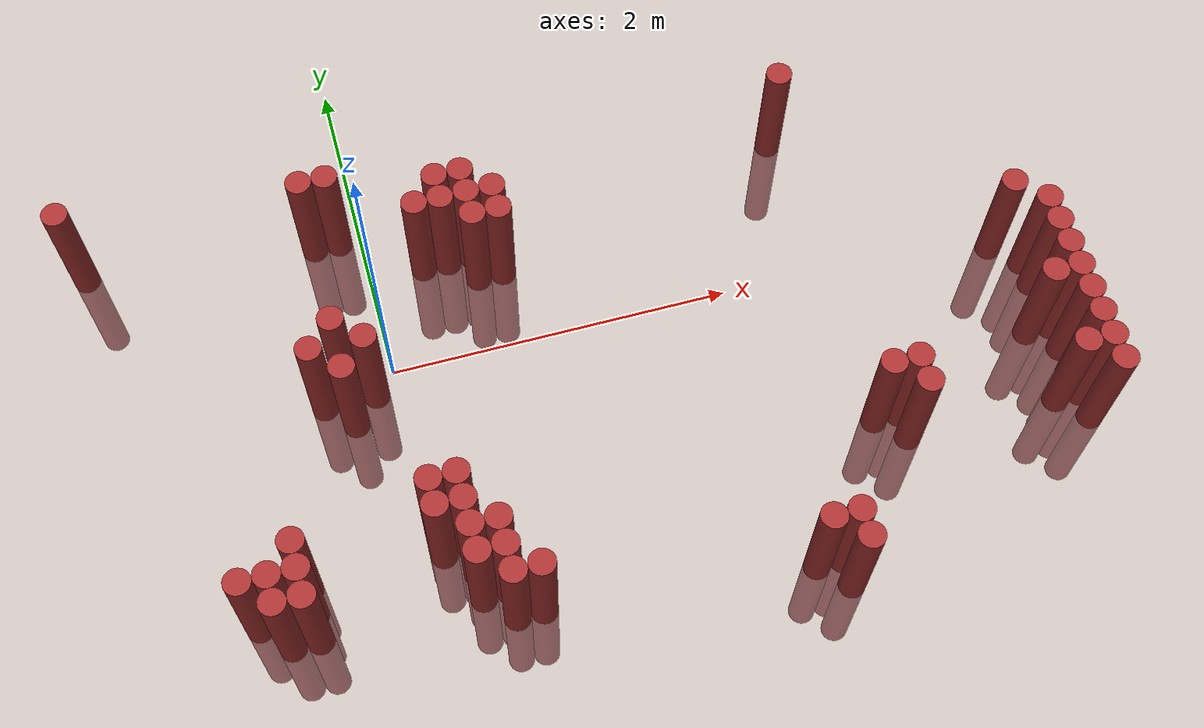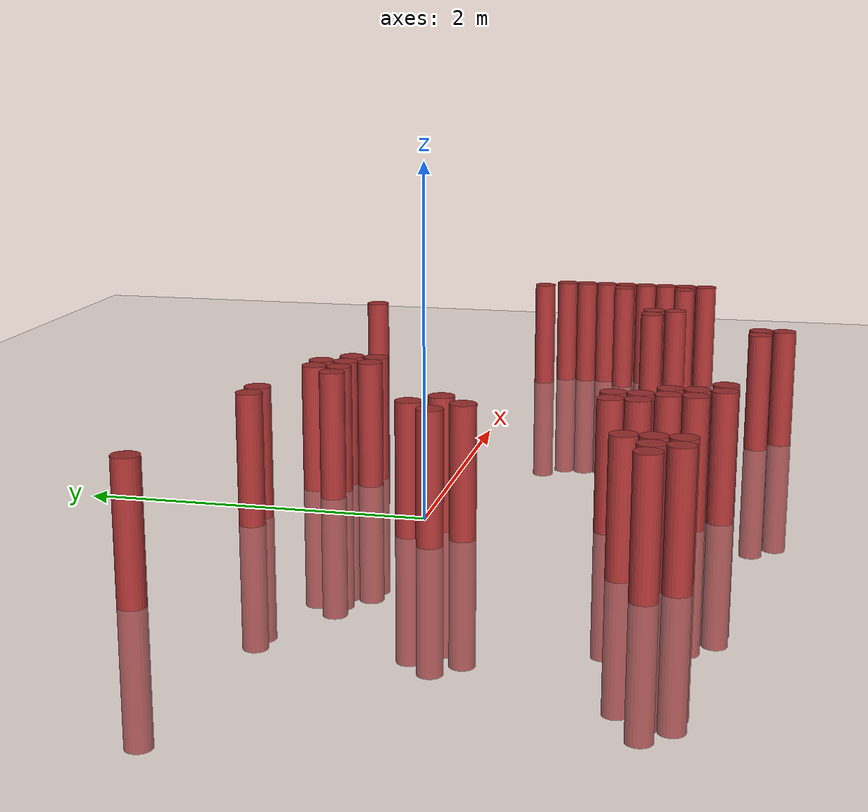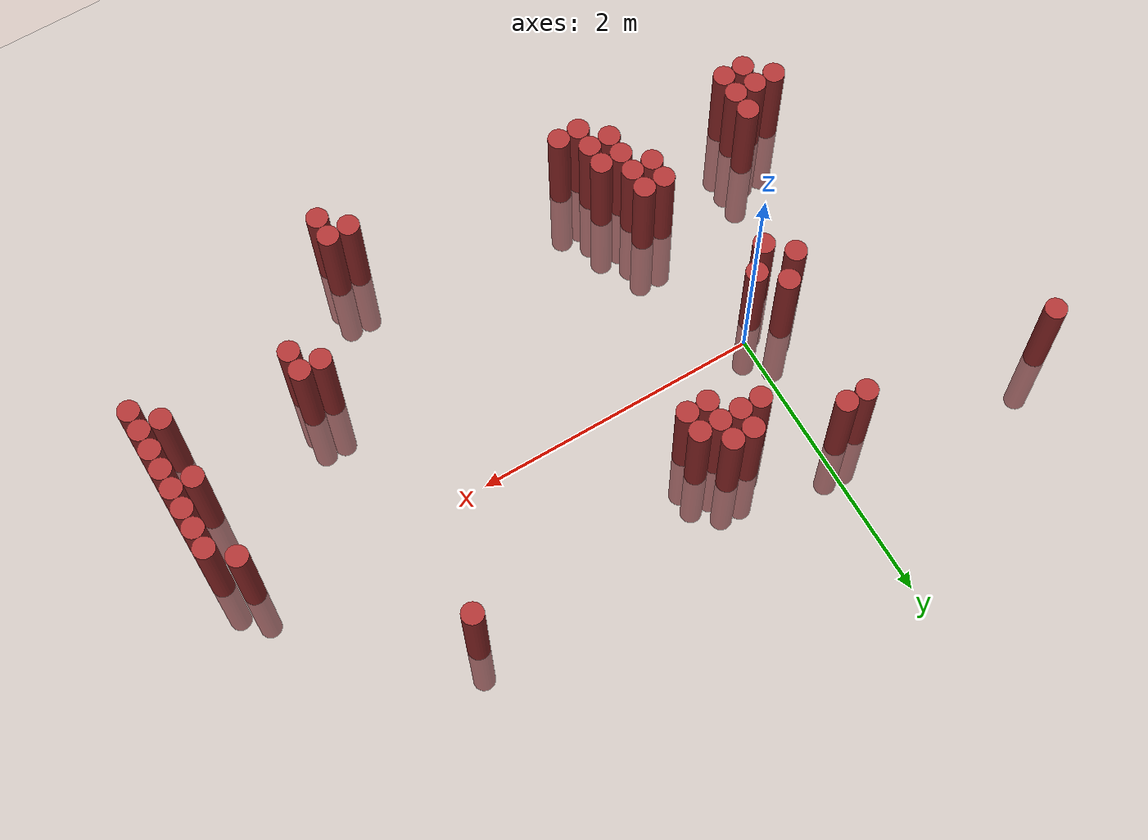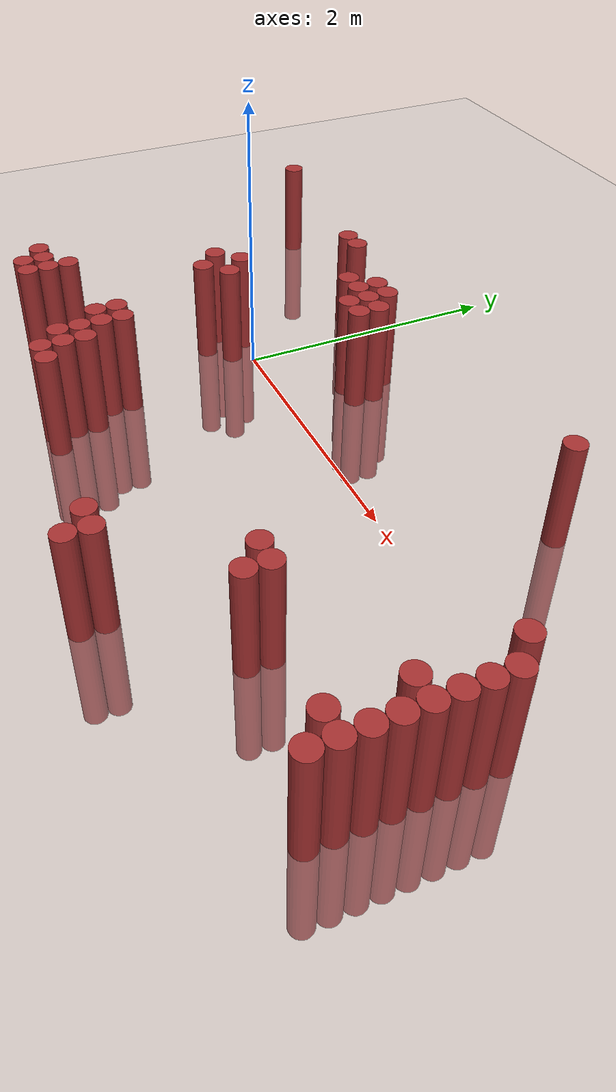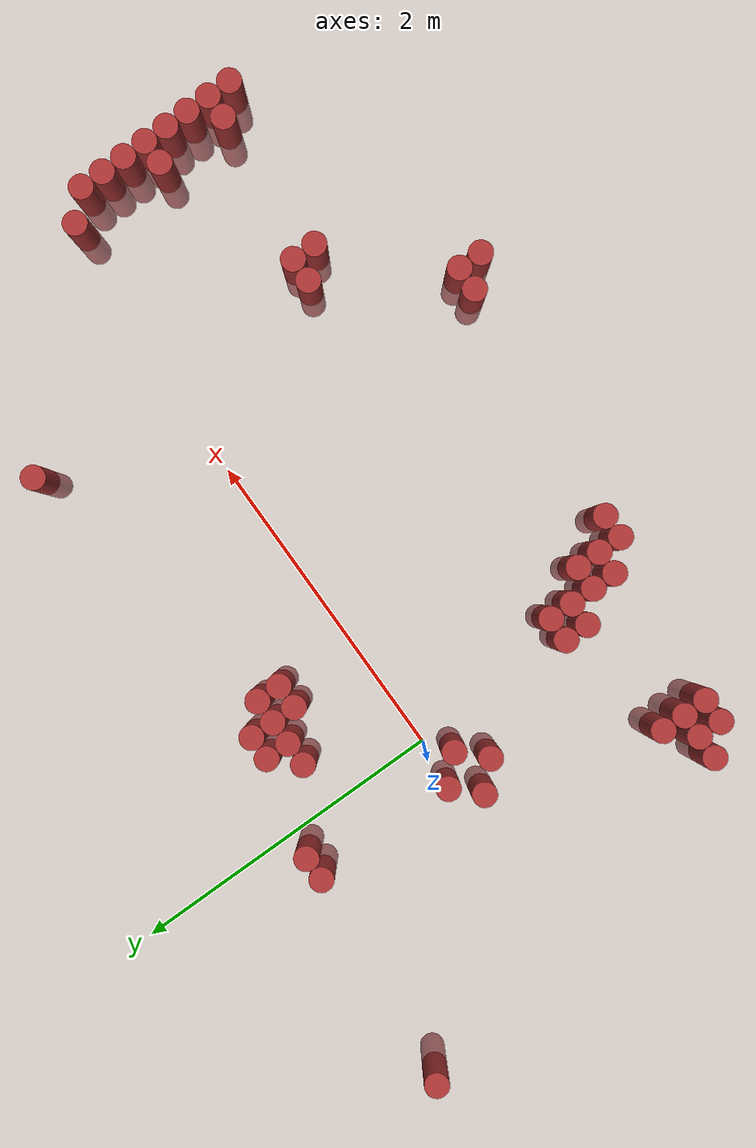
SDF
<sdf version="1.6">
 <world name="default">
  <model name="ground_plane">
   <static>1</static>
   <link name="link">
    <collision name="collision">
     <geometry><plane><normal>0 0 1</normal><size>100 100</size></plane></geometry>
     <surface><friction><ode><mu>100</mu><mu2>50</mu2></ode></friction></surface>
    </collision>
    <visual name="visual">
     <cast_shadows>0</cast_shadows>
     <geometry><plane><normal>0 0 1</normal><size>100 100</size></plane></geometry>
     <material>
      <script><uri>file://media/materials/scripts/gazebo.material</uri><name>Gazebo/Grey</name></script>
     </material>
    </visual>
   </link>
  </model>
  <model name="unit_cylinder_340">
   <static>1</static>
   <pose>-1.625000 1.075000 0.000000 0.000000 0.000000 0.000000</pose>
   <link name="link">
    <inertial>
     <mass>1</mass>
     <inertia><ixx>0.145833</ixx><ixy>0</ixy><ixz>0</ixz><iyy>0.145833</iyy><iyz>0</iyz><izz>0.125</izz></inertia>
    </inertial>
    <collision name="collision">
     <geometry><cylinder><radius>0.075000</radius><length>1.5</length></cylinder></geometry>
    </collision>
    <visual name="visual">
     <geometry><cylinder><radius>0.075000</radius><length>1.5</length></cylinder></geometry>
     <material>
      <ambient>0.648000 0.192000 0.192000 1</ambient>
      <diffuse>0.648000 0.192000 0.192000 1</diffuse>
     </material>
     <material>
      <script><name>Gazebo/Grey</name><uri>file://media/materials/scripts/gazebo.material</uri></script>
     </material>
    </visual>
   </link>
  </model>
  <model name="unit_cylinder_354">
   <static>1</static>
   <pose>-1.025000 -1.325000 0.000000 0.000000 0.000000 0.000000</pose>
   <link name="link">
    <inertial>
     <mass>1</mass>
     <inertia><ixx>0.145833</ixx><ixy>0</ixy><ixz>0</ixz><iyy>0.145833</iyy><iyz>0</iyz><izz>0.125</izz></inertia>
    </inertial>
    <collision name="collision">
     <geometry><cylinder><radius>0.075000</radius><length>1.5</length></cylinder></geometry>
    </collision>
    <visual name="visual">
     <geometry><cylinder><radius>0.075000</radius><length>1.5</length></cylinder></geometry>
     <material>
      <ambient>0.648000 0.192000 0.192000 1</ambient>
      <diffuse>0.648000 0.192000 0.192000 1</diffuse>
     </material>
     <material>
      <script><name>Gazebo/Grey</name><uri>file://media/materials/scripts/gazebo.material</uri></script>
     </material>
    </visual>
   </link>
  </model>
  <model name="unit_cylinder_355">
   <static>1</static>
   <pose>-0.875000 -1.475000 0.000000 0.000000 0.000000 0.000000</pose>
   <link name="link">
    <inertial>
     <mass>1</mass>
     <inertia><ixx>0.145833</ixx><ixy>0</ixy><ixz>0</ixz><iyy>0.145833</iyy><iyz>0</iyz><izz>0.125</izz></inertia>
    </inertial>
    <collision name="collision">
     <geometry><cylinder><radius>0.075000</radius><length>1.5</length></cylinder></geometry>
    </collision>
    <visual name="visual">
     <geometry><cylinder><radius>0.075000</radius><length>1.5</length></cylinder></geometry>
     <material>
      <ambient>0.648000 0.192000 0.192000 1</ambient>
      <diffuse>0.648000 0.192000 0.192000 1</diffuse>
     </material>
     <material>
      <script><name>Gazebo/Grey</name><uri>file://media/materials/scripts/gazebo.material</uri></script>
     </material>
    </visual>
   </link>
  </model>
  <model name="unit_cylinder_356">
   <static>1</static>
   <pose>-0.875000 -1.325000 0.000000 0.000000 0.000000 0.000000</pose>
   <link name="link">
    <inertial>
     <mass>1</mass>
     <inertia><ixx>0.145833</ixx><ixy>0</ixy><ixz>0</ixz><iyy>0.145833</iyy><iyz>0</iyz><izz>0.125</izz></inertia>
    </inertial>
    <collision name="collision">
     <geometry><cylinder><radius>0.075000</radius><length>1.5</length></cylinder></geometry>
    </collision>
    <visual name="visual">
     <geometry><cylinder><radius>0.075000</radius><length>1.5</length></cylinder></geometry>
     <material>
      <ambient>0.648000 0.192000 0.192000 1</ambient>
      <diffuse>0.648000 0.192000 0.192000 1</diffuse>
     </material>
     <material>
      <script><name>Gazebo/Grey</name><uri>file://media/materials/scripts/gazebo.material</uri></script>
     </material>
    </visual>
   </link>
  </model>
  <model name="unit_cylinder_357">
   <static>1</static>
   <pose>-0.725000 -1.475000 0.000000 0.000000 0.000000 0.000000</pose>
   <link name="link">
    <inertial>
     <mass>1</mass>
     <inertia><ixx>0.145833</ixx><ixy>0</ixy><ixz>0</ixz><iyy>0.145833</iyy><iyz>0</iyz><izz>0.125</izz></inertia>
    </inertial>
    <collision name="collision">
     <geometry><cylinder><radius>0.075000</radius><length>1.5</length></cylinder></geometry>
    </collision>
    <visual name="visual">
     <geometry><cylinder><radius>0.075000</radius><length>1.5</length></cylinder></geometry>
     <material>
      <ambient>0.648000 0.192000 0.192000 1</ambient>
      <diffuse>0.648000 0.192000 0.192000 1</diffuse>
     </material>
     <material>
      <script><name>Gazebo/Grey</name><uri>file://media/materials/scripts/gazebo.material</uri></script>
     </material>
    </visual>
   </link>
  </model>
  <model name="unit_cylinder_358">
   <static>1</static>
   <pose>-0.725000 -1.325000 0.000000 0.000000 0.000000 0.000000</pose>
   <link name="link">
    <inertial>
     <mass>1</mass>
     <inertia><ixx>0.145833</ixx><ixy>0</ixy><ixz>0</ixz><iyy>0.145833</iyy><iyz>0</iyz><izz>0.125</izz></inertia>
    </inertial>
    <collision name="collision">
     <geometry><cylinder><radius>0.075000</radius><length>1.5</length></cylinder></geometry>
    </collision>
    <visual name="visual">
     <geometry><cylinder><radius>0.075000</radius><length>1.5</length></cylinder></geometry>
     <material>
      <ambient>0.648000 0.192000 0.192000 1</ambient>
      <diffuse>0.648000 0.192000 0.192000 1</diffuse>
     </material>
     <material>
      <script><name>Gazebo/Grey</name><uri>file://media/materials/scripts/gazebo.material</uri></script>
     </material>
    </visual>
   </link>
  </model>
  <model name="unit_cylinder_359">
   <static>1</static>
   <pose>-0.725000 -1.175000 0.000000 0.000000 0.000000 0.000000</pose>
   <link name="link">
    <inertial>
     <mass>1</mass>
     <inertia><ixx>0.145833</ixx><ixy>0</ixy><ixz>0</ixz><iyy>0.145833</iyy><iyz>0</iyz><izz>0.125</izz></inertia>
    </inertial>
    <collision name="collision">
     <geometry><cylinder><radius>0.075000</radius><length>1.5</length></cylinder></geometry>
    </collision>
    <visual name="visual">
     <geometry><cylinder><radius>0.075000</radius><length>1.5</length></cylinder></geometry>
     <material>
      <ambient>0.648000 0.192000 0.192000 1</ambient>
      <diffuse>0.648000 0.192000 0.192000 1</diffuse>
     </material>
     <material>
      <script><name>Gazebo/Grey</name><uri>file://media/materials/scripts/gazebo.material</uri></script>
     </material>
    </visual>
   </link>
  </model>
  <model name="unit_cylinder_366">
   <static>1</static>
   <pose>-0.425000 -0.125000 0.000000 0.000000 0.000000 0.000000</pose>
   <link name="link">
    <inertial>
     <mass>1</mass>
     <inertia><ixx>0.145833</ixx><ixy>0</ixy><ixz>0</ixz><iyy>0.145833</iyy><iyz>0</iyz><izz>0.125</izz></inertia>
    </inertial>
    <collision name="collision">
     <geometry><cylinder><radius>0.075000</radius><length>1.5</length></cylinder></geometry>
    </collision>
    <visual name="visual">
     <geometry><cylinder><radius>0.075000</radius><length>1.5</length></cylinder></geometry>
     <material>
      <ambient>0.648000 0.192000 0.192000 1</ambient>
      <diffuse>0.648000 0.192000 0.192000 1</diffuse>
     </material>
     <material>
      <script><name>Gazebo/Grey</name><uri>file://media/materials/scripts/gazebo.material</uri></script>
     </material>
    </visual>
   </link>
  </model>
  <model name="unit_cylinder_371">
   <static>1</static>
   <pose>-0.275000 -0.275000 0.000000 0.000000 0.000000 0.000000</pose>
   <link name="link">
    <inertial>
     <mass>1</mass>
     <inertia><ixx>0.145833</ixx><ixy>0</ixy><ixz>0</ixz><iyy>0.145833</iyy><iyz>0</iyz><izz>0.125</izz></inertia>
    </inertial>
    <collision name="collision">
     <geometry><cylinder><radius>0.075000</radius><length>1.5</length></cylinder></geometry>
    </collision>
    <visual name="visual">
     <geometry><cylinder><radius>0.075000</radius><length>1.5</length></cylinder></geometry>
     <material>
      <ambient>0.648000 0.192000 0.192000 1</ambient>
      <diffuse>0.648000 0.192000 0.192000 1</diffuse>
     </material>
     <material>
      <script><name>Gazebo/Grey</name><uri>file://media/materials/scripts/gazebo.material</uri></script>
     </material>
    </visual>
   </link>
  </model>
  <model name="unit_cylinder_372">
   <static>1</static>
   <pose>-0.275000 0.025000 0.000000 0.000000 0.000000 0.000000</pose>
   <link name="link">
    <inertial>
     <mass>1</mass>
     <inertia><ixx>0.145833</ixx><ixy>0</ixy><ixz>0</ixz><iyy>0.145833</iyy><iyz>0</iyz><izz>0.125</izz></inertia>
    </inertial>
    <collision name="collision">
     <geometry><cylinder><radius>0.075000</radius><length>1.5</length></cylinder></geometry>
    </collision>
    <visual name="visual">
     <geometry><cylinder><radius>0.075000</radius><length>1.5</length></cylinder></geometry>
     <material>
      <ambient>0.648000 0.192000 0.192000 1</ambient>
      <diffuse>0.648000 0.192000 0.192000 1</diffuse>
     </material>
     <material>
      <script><name>Gazebo/Grey</name><uri>file://media/materials/scripts/gazebo.material</uri></script>
     </material>
    </visual>
   </link>
  </model>
  <model name="unit_cylinder_373">
   <static>1</static>
   <pose>-0.275000 0.925000 0.000000 0.000000 0.000000 0.000000</pose>
   <link name="link">
    <inertial>
     <mass>1</mass>
     <inertia><ixx>0.145833</ixx><ixy>0</ixy><ixz>0</ixz><iyy>0.145833</iyy><iyz>0</iyz><izz>0.125</izz></inertia>
    </inertial>
    <collision name="collision">
     <geometry><cylinder><radius>0.075000</radius><length>1.5</length></cylinder></geometry>
    </collision>
    <visual name="visual">
     <geometry><cylinder><radius>0.075000</radius><length>1.5</length></cylinder></geometry>
     <material>
      <ambient>0.648000 0.192000 0.192000 1</ambient>
      <diffuse>0.648000 0.192000 0.192000 1</diffuse>
     </material>
     <material>
      <script><name>Gazebo/Grey</name><uri>file://media/materials/scripts/gazebo.material</uri></script>
     </material>
    </visual>
   </link>
  </model>
  <model name="unit_cylinder_377">
   <static>1</static>
   <pose>-0.125000 -0.125000 0.000000 0.000000 0.000000 0.000000</pose>
   <link name="link">
    <inertial>
     <mass>1</mass>
     <inertia><ixx>0.145833</ixx><ixy>0</ixy><ixz>0</ixz><iyy>0.145833</iyy><iyz>0</iyz><izz>0.125</izz></inertia>
    </inertial>
    <collision name="collision">
     <geometry><cylinder><radius>0.075000</radius><length>1.5</length></cylinder></geometry>
    </collision>
    <visual name="visual">
     <geometry><cylinder><radius>0.075000</radius><length>1.5</length></cylinder></geometry>
     <material>
      <ambient>0.648000 0.192000 0.192000 1</ambient>
      <diffuse>0.648000 0.192000 0.192000 1</diffuse>
     </material>
     <material>
      <script><name>Gazebo/Grey</name><uri>file://media/materials/scripts/gazebo.material</uri></script>
     </material>
    </visual>
   </link>
  </model>
  <model name="unit_cylinder_378">
   <static>1</static>
   <pose>-0.125000 0.925000 0.000000 0.000000 0.000000 0.000000</pose>
   <link name="link">
    <inertial>
     <mass>1</mass>
     <inertia><ixx>0.145833</ixx><ixy>0</ixy><ixz>0</ixz><iyy>0.145833</iyy><iyz>0</iyz><izz>0.125</izz></inertia>
    </inertial>
    <collision name="collision">
     <geometry><cylinder><radius>0.075000</radius><length>1.5</length></cylinder></geometry>
    </collision>
    <visual name="visual">
     <geometry><cylinder><radius>0.075000</radius><length>1.5</length></cylinder></geometry>
     <material>
      <ambient>0.648000 0.192000 0.192000 1</ambient>
      <diffuse>0.648000 0.192000 0.192000 1</diffuse>
     </material>
     <material>
      <script><name>Gazebo/Grey</name><uri>file://media/materials/scripts/gazebo.material</uri></script>
     </material>
    </visual>
   </link>
  </model>
  <model name="unit_cylinder_382">
   <static>1</static>
   <pose>0.025000 -1.175000 0.000000 0.000000 0.000000 0.000000</pose>
   <link name="link">
    <inertial>
     <mass>1</mass>
     <inertia><ixx>0.145833</ixx><ixy>0</ixy><ixz>0</ixz><iyy>0.145833</iyy><iyz>0</iyz><izz>0.125</izz></inertia>
    </inertial>
    <collision name="collision">
     <geometry><cylinder><radius>0.075000</radius><length>1.5</length></cylinder></geometry>
    </collision>
    <visual name="visual">
     <geometry><cylinder><radius>0.075000</radius><length>1.5</length></cylinder></geometry>
     <material>
      <ambient>0.648000 0.192000 0.192000 1</ambient>
      <diffuse>0.648000 0.192000 0.192000 1</diffuse>
     </material>
     <material>
      <script><name>Gazebo/Grey</name><uri>file://media/materials/scripts/gazebo.material</uri></script>
     </material>
    </visual>
   </link>
  </model>
  <model name="unit_cylinder_383">
   <static>1</static>
   <pose>0.025000 -1.025000 0.000000 0.000000 0.000000 0.000000</pose>
   <link name="link">
    <inertial>
     <mass>1</mass>
     <inertia><ixx>0.145833</ixx><ixy>0</ixy><ixz>0</ixz><iyy>0.145833</iyy><iyz>0</iyz><izz>0.125</izz></inertia>
    </inertial>
    <collision name="collision">
     <geometry><cylinder><radius>0.075000</radius><length>1.5</length></cylinder></geometry>
    </collision>
    <visual name="visual">
     <geometry><cylinder><radius>0.075000</radius><length>1.5</length></cylinder></geometry>
     <material>
      <ambient>0.648000 0.192000 0.192000 1</ambient>
      <diffuse>0.648000 0.192000 0.192000 1</diffuse>
     </material>
     <material>
      <script><name>Gazebo/Grey</name><uri>file://media/materials/scripts/gazebo.material</uri></script>
     </material>
    </visual>
   </link>
  </model>
  <model name="unit_cylinder_385">
   <static>1</static>
   <pose>0.175000 -1.475000 0.000000 0.000000 0.000000 0.000000</pose>
   <link name="link">
    <inertial>
     <mass>1</mass>
     <inertia><ixx>0.145833</ixx><ixy>0</ixy><ixz>0</ixz><iyy>0.145833</iyy><iyz>0</iyz><izz>0.125</izz></inertia>
    </inertial>
    <collision name="collision">
     <geometry><cylinder><radius>0.075000</radius><length>1.5</length></cylinder></geometry>
    </collision>
    <visual name="visual">
     <geometry><cylinder><radius>0.075000</radius><length>1.5</length></cylinder></geometry>
     <material>
      <ambient>0.648000 0.192000 0.192000 1</ambient>
      <diffuse>0.648000 0.192000 0.192000 1</diffuse>
     </material>
     <material>
      <script><name>Gazebo/Grey</name><uri>file://media/materials/scripts/gazebo.material</uri></script>
     </material>
    </visual>
   </link>
  </model>
  <model name="unit_cylinder_386">
   <static>1</static>
   <pose>0.175000 -1.325000 0.000000 0.000000 0.000000 0.000000</pose>
   <link name="link">
    <inertial>
     <mass>1</mass>
     <inertia><ixx>0.145833</ixx><ixy>0</ixy><ixz>0</ixz><iyy>0.145833</iyy><iyz>0</iyz><izz>0.125</izz></inertia>
    </inertial>
    <collision name="collision">
     <geometry><cylinder><radius>0.075000</radius><length>1.5</length></cylinder></geometry>
    </collision>
    <visual name="visual">
     <geometry><cylinder><radius>0.075000</radius><length>1.5</length></cylinder></geometry>
     <material>
      <ambient>0.648000 0.192000 0.192000 1</ambient>
      <diffuse>0.648000 0.192000 0.192000 1</diffuse>
     </material>
     <material>
      <script><name>Gazebo/Grey</name><uri>file://media/materials/scripts/gazebo.material</uri></script>
     </material>
    </visual>
   </link>
  </model>
  <model name="unit_cylinder_387">
   <static>1</static>
   <pose>0.175000 -1.175000 0.000000 0.000000 0.000000 0.000000</pose>
   <link name="link">
    <inertial>
     <mass>1</mass>
     <inertia><ixx>0.145833</ixx><ixy>0</ixy><ixz>0</ixz><iyy>0.145833</iyy><iyz>0</iyz><izz>0.125</izz></inertia>
    </inertial>
    <collision name="collision">
     <geometry><cylinder><radius>0.075000</radius><length>1.5</length></cylinder></geometry>
    </collision>
    <visual name="visual">
     <geometry><cylinder><radius>0.075000</radius><length>1.5</length></cylinder></geometry>
     <material>
      <ambient>0.648000 0.192000 0.192000 1</ambient>
      <diffuse>0.648000 0.192000 0.192000 1</diffuse>
     </material>
     <material>
      <script><name>Gazebo/Grey</name><uri>file://media/materials/scripts/gazebo.material</uri></script>
     </material>
    </visual>
   </link>
  </model>
  <model name="unit_cylinder_388">
   <static>1</static>
   <pose>0.175000 -1.025000 0.000000 0.000000 0.000000 0.000000</pose>
   <link name="link">
    <inertial>
     <mass>1</mass>
     <inertia><ixx>0.145833</ixx><ixy>0</ixy><ixz>0</ixz><iyy>0.145833</iyy><iyz>0</iyz><izz>0.125</izz></inertia>
    </inertial>
    <collision name="collision">
     <geometry><cylinder><radius>0.075000</radius><length>1.5</length></cylinder></geometry>
    </collision>
    <visual name="visual">
     <geometry><cylinder><radius>0.075000</radius><length>1.5</length></cylinder></geometry>
     <material>
      <ambient>0.648000 0.192000 0.192000 1</ambient>
      <diffuse>0.648000 0.192000 0.192000 1</diffuse>
     </material>
     <material>
      <script><name>Gazebo/Grey</name><uri>file://media/materials/scripts/gazebo.material</uri></script>
     </material>
    </visual>
   </link>
  </model>
  <model name="unit_cylinder_392">
   <static>1</static>
   <pose>0.325000 -1.625000 0.000000 0.000000 0.000000 0.000000</pose>
   <link name="link">
    <inertial>
     <mass>1</mass>
     <inertia><ixx>0.145833</ixx><ixy>0</ixy><ixz>0</ixz><iyy>0.145833</iyy><iyz>0</iyz><izz>0.125</izz></inertia>
    </inertial>
    <collision name="collision">
     <geometry><cylinder><radius>0.075000</radius><length>1.5</length></cylinder></geometry>
    </collision>
    <visual name="visual">
     <geometry><cylinder><radius>0.075000</radius><length>1.5</length></cylinder></geometry>
     <material>
      <ambient>0.648000 0.192000 0.192000 1</ambient>
      <diffuse>0.648000 0.192000 0.192000 1</diffuse>
     </material>
     <material>
      <script><name>Gazebo/Grey</name><uri>file://media/materials/scripts/gazebo.material</uri></script>
     </material>
    </visual>
   </link>
  </model>
  <model name="unit_cylinder_393">
   <static>1</static>
   <pose>0.325000 -1.475000 0.000000 0.000000 0.000000 0.000000</pose>
   <link name="link">
    <inertial>
     <mass>1</mass>
     <inertia><ixx>0.145833</ixx><ixy>0</ixy><ixz>0</ixz><iyy>0.145833</iyy><iyz>0</iyz><izz>0.125</izz></inertia>
    </inertial>
    <collision name="collision">
     <geometry><cylinder><radius>0.075000</radius><length>1.5</length></cylinder></geometry>
    </collision>
    <visual name="visual">
     <geometry><cylinder><radius>0.075000</radius><length>1.5</length></cylinder></geometry>
     <material>
      <ambient>0.648000 0.192000 0.192000 1</ambient>
      <diffuse>0.648000 0.192000 0.192000 1</diffuse>
     </material>
     <material>
      <script><name>Gazebo/Grey</name><uri>file://media/materials/scripts/gazebo.material</uri></script>
     </material>
    </visual>
   </link>
  </model>
  <model name="unit_cylinder_394">
   <static>1</static>
   <pose>0.325000 -1.325000 0.000000 0.000000 0.000000 0.000000</pose>
   <link name="link">
    <inertial>
     <mass>1</mass>
     <inertia><ixx>0.145833</ixx><ixy>0</ixy><ixz>0</ixz><iyy>0.145833</iyy><iyz>0</iyz><izz>0.125</izz></inertia>
    </inertial>
    <collision name="collision">
     <geometry><cylinder><radius>0.075000</radius><length>1.5</length></cylinder></geometry>
    </collision>
    <visual name="visual">
     <geometry><cylinder><radius>0.075000</radius><length>1.5</length></cylinder></geometry>
     <material>
      <ambient>0.648000 0.192000 0.192000 1</ambient>
      <diffuse>0.648000 0.192000 0.192000 1</diffuse>
     </material>
     <material>
      <script><name>Gazebo/Grey</name><uri>file://media/materials/scripts/gazebo.material</uri></script>
     </material>
    </visual>
   </link>
  </model>
  <model name="unit_cylinder_395">
   <static>1</static>
   <pose>0.325000 0.625000 0.000000 0.000000 0.000000 0.000000</pose>
   <link name="link">
    <inertial>
     <mass>1</mass>
     <inertia><ixx>0.145833</ixx><ixy>0</ixy><ixz>0</ixz><iyy>0.145833</iyy><iyz>0</iyz><izz>0.125</izz></inertia>
    </inertial>
    <collision name="collision">
     <geometry><cylinder><radius>0.075000</radius><length>1.5</length></cylinder></geometry>
    </collision>
    <visual name="visual">
     <geometry><cylinder><radius>0.075000</radius><length>1.5</length></cylinder></geometry>
     <material>
      <ambient>0.648000 0.192000 0.192000 1</ambient>
      <diffuse>0.648000 0.192000 0.192000 1</diffuse>
     </material>
     <material>
      <script><name>Gazebo/Grey</name><uri>file://media/materials/scripts/gazebo.material</uri></script>
     </material>
    </visual>
   </link>
  </model>
  <model name="unit_cylinder_400">
   <static>1</static>
   <pose>0.475000 -1.625000 0.000000 0.000000 0.000000 0.000000</pose>
   <link name="link">
    <inertial>
     <mass>1</mass>
     <inertia><ixx>0.145833</ixx><ixy>0</ixy><ixz>0</ixz><iyy>0.145833</iyy><iyz>0</iyz><izz>0.125</izz></inertia>
    </inertial>
    <collision name="collision">
     <geometry><cylinder><radius>0.075000</radius><length>1.5</length></cylinder></geometry>
    </collision>
    <visual name="visual">
     <geometry><cylinder><radius>0.075000</radius><length>1.5</length></cylinder></geometry>
     <material>
      <ambient>0.648000 0.192000 0.192000 1</ambient>
      <diffuse>0.648000 0.192000 0.192000 1</diffuse>
     </material>
     <material>
      <script><name>Gazebo/Grey</name><uri>file://media/materials/scripts/gazebo.material</uri></script>
     </material>
    </visual>
   </link>
  </model>
  <model name="unit_cylinder_401">
   <static>1</static>
   <pose>0.475000 0.625000 0.000000 0.000000 0.000000 0.000000</pose>
   <link name="link">
    <inertial>
     <mass>1</mass>
     <inertia><ixx>0.145833</ixx><ixy>0</ixy><ixz>0</ixz><iyy>0.145833</iyy><iyz>0</iyz><izz>0.125</izz></inertia>
    </inertial>
    <collision name="collision">
     <geometry><cylinder><radius>0.075000</radius><length>1.5</length></cylinder></geometry>
    </collision>
    <visual name="visual">
     <geometry><cylinder><radius>0.075000</radius><length>1.5</length></cylinder></geometry>
     <material>
      <ambient>0.648000 0.192000 0.192000 1</ambient>
      <diffuse>0.648000 0.192000 0.192000 1</diffuse>
     </material>
     <material>
      <script><name>Gazebo/Grey</name><uri>file://media/materials/scripts/gazebo.material</uri></script>
     </material>
    </visual>
   </link>
  </model>
  <model name="unit_cylinder_402">
   <static>1</static>
   <pose>0.475000 0.775000 0.000000 0.000000 0.000000 0.000000</pose>
   <link name="link">
    <inertial>
     <mass>1</mass>
     <inertia><ixx>0.145833</ixx><ixy>0</ixy><ixz>0</ixz><iyy>0.145833</iyy><iyz>0</iyz><izz>0.125</izz></inertia>
    </inertial>
    <collision name="collision">
     <geometry><cylinder><radius>0.075000</radius><length>1.5</length></cylinder></geometry>
    </collision>
    <visual name="visual">
     <geometry><cylinder><radius>0.075000</radius><length>1.5</length></cylinder></geometry>
     <material>
      <ambient>0.648000 0.192000 0.192000 1</ambient>
      <diffuse>0.648000 0.192000 0.192000 1</diffuse>
     </material>
     <material>
      <script><name>Gazebo/Grey</name><uri>file://media/materials/scripts/gazebo.material</uri></script>
     </material>
    </visual>
   </link>
  </model>
  <model name="unit_cylinder_406">
   <static>1</static>
   <pose>0.625000 0.475000 0.000000 0.000000 0.000000 0.000000</pose>
   <link name="link">
    <inertial>
     <mass>1</mass>
     <inertia><ixx>0.145833</ixx><ixy>0</ixy><ixz>0</ixz><iyy>0.145833</iyy><iyz>0</iyz><izz>0.125</izz></inertia>
    </inertial>
    <collision name="collision">
     <geometry><cylinder><radius>0.075000</radius><length>1.5</length></cylinder></geometry>
    </collision>
    <visual name="visual">
     <geometry><cylinder><radius>0.075000</radius><length>1.5</length></cylinder></geometry>
     <material>
      <ambient>0.648000 0.192000 0.192000 1</ambient>
      <diffuse>0.648000 0.192000 0.192000 1</diffuse>
     </material>
     <material>
      <script><name>Gazebo/Grey</name><uri>file://media/materials/scripts/gazebo.material</uri></script>
     </material>
    </visual>
   </link>
  </model>
  <model name="unit_cylinder_407">
   <static>1</static>
   <pose>0.625000 0.625000 0.000000 0.000000 0.000000 0.000000</pose>
   <link name="link">
    <inertial>
     <mass>1</mass>
     <inertia><ixx>0.145833</ixx><ixy>0</ixy><ixz>0</ixz><iyy>0.145833</iyy><iyz>0</iyz><izz>0.125</izz></inertia>
    </inertial>
    <collision name="collision">
     <geometry><cylinder><radius>0.075000</radius><length>1.5</length></cylinder></geometry>
    </collision>
    <visual name="visual">
     <geometry><cylinder><radius>0.075000</radius><length>1.5</length></cylinder></geometry>
     <material>
      <ambient>0.648000 0.192000 0.192000 1</ambient>
      <diffuse>0.648000 0.192000 0.192000 1</diffuse>
     </material>
     <material>
      <script><name>Gazebo/Grey</name><uri>file://media/materials/scripts/gazebo.material</uri></script>
     </material>
    </visual>
   </link>
  </model>
  <model name="unit_cylinder_408">
   <static>1</static>
   <pose>0.625000 0.775000 0.000000 0.000000 0.000000 0.000000</pose>
   <link name="link">
    <inertial>
     <mass>1</mass>
     <inertia><ixx>0.145833</ixx><ixy>0</ixy><ixz>0</ixz><iyy>0.145833</iyy><iyz>0</iyz><izz>0.125</izz></inertia>
    </inertial>
    <collision name="collision">
     <geometry><cylinder><radius>0.075000</radius><length>1.5</length></cylinder></geometry>
    </collision>
    <visual name="visual">
     <geometry><cylinder><radius>0.075000</radius><length>1.5</length></cylinder></geometry>
     <material>
      <ambient>0.648000 0.192000 0.192000 1</ambient>
      <diffuse>0.648000 0.192000 0.192000 1</diffuse>
     </material>
     <material>
      <script><name>Gazebo/Grey</name><uri>file://media/materials/scripts/gazebo.material</uri></script>
     </material>
    </visual>
   </link>
  </model>
  <model name="unit_cylinder_411">
   <static>1</static>
   <pose>0.775000 0.475000 0.000000 0.000000 0.000000 0.000000</pose>
   <link name="link">
    <inertial>
     <mass>1</mass>
     <inertia><ixx>0.145833</ixx><ixy>0</ixy><ixz>0</ixz><iyy>0.145833</iyy><iyz>0</iyz><izz>0.125</izz></inertia>
    </inertial>
    <collision name="collision">
     <geometry><cylinder><radius>0.075000</radius><length>1.5</length></cylinder></geometry>
    </collision>
    <visual name="visual">
     <geometry><cylinder><radius>0.075000</radius><length>1.5</length></cylinder></geometry>
     <material>
      <ambient>0.648000 0.192000 0.192000 1</ambient>
      <diffuse>0.648000 0.192000 0.192000 1</diffuse>
     </material>
     <material>
      <script><name>Gazebo/Grey</name><uri>file://media/materials/scripts/gazebo.material</uri></script>
     </material>
    </visual>
   </link>
  </model>
  <model name="unit_cylinder_412">
   <static>1</static>
   <pose>0.775000 0.625000 0.000000 0.000000 0.000000 0.000000</pose>
   <link name="link">
    <inertial>
     <mass>1</mass>
     <inertia><ixx>0.145833</ixx><ixy>0</ixy><ixz>0</ixz><iyy>0.145833</iyy><iyz>0</iyz><izz>0.125</izz></inertia>
    </inertial>
    <collision name="collision">
     <geometry><cylinder><radius>0.075000</radius><length>1.5</length></cylinder></geometry>
    </collision>
    <visual name="visual">
     <geometry><cylinder><radius>0.075000</radius><length>1.5</length></cylinder></geometry>
     <material>
      <ambient>0.648000 0.192000 0.192000 1</ambient>
      <diffuse>0.648000 0.192000 0.192000 1</diffuse>
     </material>
     <material>
      <script><name>Gazebo/Grey</name><uri>file://media/materials/scripts/gazebo.material</uri></script>
     </material>
    </visual>
   </link>
  </model>
  <model name="unit_cylinder_420">
   <static>1</static>
   <pose>1.975000 -1.775000 0.000000 0.000000 0.000000 0.000000</pose>
   <link name="link">
    <inertial>
     <mass>1</mass>
     <inertia><ixx>0.145833</ixx><ixy>0</ixy><ixz>0</ixz><iyy>0.145833</iyy><iyz>0</iyz><izz>0.125</izz></inertia>
    </inertial>
    <collision name="collision">
     <geometry><cylinder><radius>0.075000</radius><length>1.5</length></cylinder></geometry>
    </collision>
    <visual name="visual">
     <geometry><cylinder><radius>0.075000</radius><length>1.5</length></cylinder></geometry>
     <material>
      <ambient>0.648000 0.192000 0.192000 1</ambient>
      <diffuse>0.648000 0.192000 0.192000 1</diffuse>
     </material>
     <material>
      <script><name>Gazebo/Grey</name><uri>file://media/materials/scripts/gazebo.material</uri></script>
     </material>
    </visual>
   </link>
  </model>
  <model name="unit_cylinder_426">
   <static>1</static>
   <pose>2.125000 -1.925000 0.000000 0.000000 0.000000 0.000000</pose>
   <link name="link">
    <inertial>
     <mass>1</mass>
     <inertia><ixx>0.145833</ixx><ixy>0</ixy><ixz>0</ixz><iyy>0.145833</iyy><iyz>0</iyz><izz>0.125</izz></inertia>
    </inertial>
    <collision name="collision">
     <geometry><cylinder><radius>0.075000</radius><length>1.5</length></cylinder></geometry>
    </collision>
    <visual name="visual">
     <geometry><cylinder><radius>0.075000</radius><length>1.5</length></cylinder></geometry>
     <material>
      <ambient>0.648000 0.192000 0.192000 1</ambient>
      <diffuse>0.648000 0.192000 0.192000 1</diffuse>
     </material>
     <material>
      <script><name>Gazebo/Grey</name><uri>file://media/materials/scripts/gazebo.material</uri></script>
     </material>
    </visual>
   </link>
  </model>
  <model name="unit_cylinder_427">
   <static>1</static>
   <pose>2.125000 -1.775000 0.000000 0.000000 0.000000 0.000000</pose>
   <link name="link">
    <inertial>
     <mass>1</mass>
     <inertia><ixx>0.145833</ixx><ixy>0</ixy><ixz>0</ixz><iyy>0.145833</iyy><iyz>0</iyz><izz>0.125</izz></inertia>
    </inertial>
    <collision name="collision">
     <geometry><cylinder><radius>0.075000</radius><length>1.5</length></cylinder></geometry>
    </collision>
    <visual name="visual">
     <geometry><cylinder><radius>0.075000</radius><length>1.5</length></cylinder></geometry>
     <material>
      <ambient>0.648000 0.192000 0.192000 1</ambient>
      <diffuse>0.648000 0.192000 0.192000 1</diffuse>
     </material>
     <material>
      <script><name>Gazebo/Grey</name><uri>file://media/materials/scripts/gazebo.material</uri></script>
     </material>
    </visual>
   </link>
  </model>
  <model name="unit_cylinder_432">
   <static>1</static>
   <pose>2.575000 -1.025000 0.000000 0.000000 0.000000 0.000000</pose>
   <link name="link">
    <inertial>
     <mass>1</mass>
     <inertia><ixx>0.145833</ixx><ixy>0</ixy><ixz>0</ixz><iyy>0.145833</iyy><iyz>0</iyz><izz>0.125</izz></inertia>
    </inertial>
    <collision name="collision">
     <geometry><cylinder><radius>0.075000</radius><length>1.5</length></cylinder></geometry>
    </collision>
    <visual name="visual">
     <geometry><cylinder><radius>0.075000</radius><length>1.5</length></cylinder></geometry>
     <material>
      <ambient>0.648000 0.192000 0.192000 1</ambient>
      <diffuse>0.648000 0.192000 0.192000 1</diffuse>
     </material>
     <material>
      <script><name>Gazebo/Grey</name><uri>file://media/materials/scripts/gazebo.material</uri></script>
     </material>
    </visual>
   </link>
  </model>
  <model name="unit_cylinder_433">
   <static>1</static>
   <pose>2.575000 0.925000 0.000000 0.000000 0.000000 0.000000</pose>
   <link name="link">
    <inertial>
     <mass>1</mass>
     <inertia><ixx>0.145833</ixx><ixy>0</ixy><ixz>0</ixz><iyy>0.145833</iyy><iyz>0</iyz><izz>0.125</izz></inertia>
    </inertial>
    <collision name="collision">
     <geometry><cylinder><radius>0.075000</radius><length>1.5</length></cylinder></geometry>
    </collision>
    <visual name="visual">
     <geometry><cylinder><radius>0.075000</radius><length>1.5</length></cylinder></geometry>
     <material>
      <ambient>0.648000 0.192000 0.192000 1</ambient>
      <diffuse>0.648000 0.192000 0.192000 1</diffuse>
     </material>
     <material>
      <script><name>Gazebo/Grey</name><uri>file://media/materials/scripts/gazebo.material</uri></script>
     </material>
    </visual>
   </link>
  </model>
  <model name="unit_cylinder_439">
   <static>1</static>
   <pose>2.725000 -1.175000 0.000000 0.000000 0.000000 0.000000</pose>
   <link name="link">
    <inertial>
     <mass>1</mass>
     <inertia><ixx>0.145833</ixx><ixy>0</ixy><ixz>0</ixz><iyy>0.145833</iyy><iyz>0</iyz><izz>0.125</izz></inertia>
    </inertial>
    <collision name="collision">
     <geometry><cylinder><radius>0.075000</radius><length>1.5</length></cylinder></geometry>
    </collision>
    <visual name="visual">
     <geometry><cylinder><radius>0.075000</radius><length>1.5</length></cylinder></geometry>
     <material>
      <ambient>0.648000 0.192000 0.192000 1</ambient>
      <diffuse>0.648000 0.192000 0.192000 1</diffuse>
     </material>
     <material>
      <script><name>Gazebo/Grey</name><uri>file://media/materials/scripts/gazebo.material</uri></script>
     </material>
    </visual>
   </link>
  </model>
  <model name="unit_cylinder_440">
   <static>1</static>
   <pose>2.725000 -1.025000 0.000000 0.000000 0.000000 0.000000</pose>
   <link name="link">
    <inertial>
     <mass>1</mass>
     <inertia><ixx>0.145833</ixx><ixy>0</ixy><ixz>0</ixz><iyy>0.145833</iyy><iyz>0</iyz><izz>0.125</izz></inertia>
    </inertial>
    <collision name="collision">
     <geometry><cylinder><radius>0.075000</radius><length>1.5</length></cylinder></geometry>
    </collision>
    <visual name="visual">
     <geometry><cylinder><radius>0.075000</radius><length>1.5</length></cylinder></geometry>
     <material>
      <ambient>0.648000 0.192000 0.192000 1</ambient>
      <diffuse>0.648000 0.192000 0.192000 1</diffuse>
     </material>
     <material>
      <script><name>Gazebo/Grey</name><uri>file://media/materials/scripts/gazebo.material</uri></script>
     </material>
    </visual>
   </link>
  </model>
  <model name="unit_cylinder_472">
   <static>1</static>
   <pose>3.625000 -1.175000 0.000000 0.000000 0.000000 0.000000</pose>
   <link name="link">
    <inertial>
     <mass>1</mass>
     <inertia><ixx>0.145833</ixx><ixy>0</ixy><ixz>0</ixz><iyy>0.145833</iyy><iyz>0</iyz><izz>0.125</izz></inertia>
    </inertial>
    <collision name="collision">
     <geometry><cylinder><radius>0.075000</radius><length>1.5</length></cylinder></geometry>
    </collision>
    <visual name="visual">
     <geometry><cylinder><radius>0.075000</radius><length>1.5</length></cylinder></geometry>
     <material>
      <ambient>0.648000 0.192000 0.192000 1</ambient>
      <diffuse>0.648000 0.192000 0.192000 1</diffuse>
     </material>
     <material>
      <script><name>Gazebo/Grey</name><uri>file://media/materials/scripts/gazebo.material</uri></script>
     </material>
    </visual>
   </link>
  </model>
  <model name="unit_cylinder_473">
   <static>1</static>
   <pose>3.625000 -0.725000 0.000000 0.000000 0.000000 0.000000</pose>
   <link name="link">
    <inertial>
     <mass>1</mass>
     <inertia><ixx>0.145833</ixx><ixy>0</ixy><ixz>0</ixz><iyy>0.145833</iyy><iyz>0</iyz><izz>0.125</izz></inertia>
    </inertial>
    <collision name="collision">
     <geometry><cylinder><radius>0.075000</radius><length>1.5</length></cylinder></geometry>
    </collision>
    <visual name="visual">
     <geometry><cylinder><radius>0.075000</radius><length>1.5</length></cylinder></geometry>
     <material>
      <ambient>0.648000 0.192000 0.192000 1</ambient>
      <diffuse>0.648000 0.192000 0.192000 1</diffuse>
     </material>
     <material>
      <script><name>Gazebo/Grey</name><uri>file://media/materials/scripts/gazebo.material</uri></script>
     </material>
    </visual>
   </link>
  </model>
  <model name="unit_cylinder_474">
   <static>1</static>
   <pose>3.625000 -0.125000 0.000000 0.000000 0.000000 0.000000</pose>
   <link name="link">
    <inertial>
     <mass>1</mass>
     <inertia><ixx>0.145833</ixx><ixy>0</ixy><ixz>0</ixz><iyy>0.145833</iyy><iyz>0</iyz><izz>0.125</izz></inertia>
    </inertial>
    <collision name="collision">
     <geometry><cylinder><radius>0.075000</radius><length>1.5</length></cylinder></geometry>
    </collision>
    <visual name="visual">
     <geometry><cylinder><radius>0.075000</radius><length>1.5</length></cylinder></geometry>
     <material>
      <ambient>0.648000 0.192000 0.192000 1</ambient>
      <diffuse>0.648000 0.192000 0.192000 1</diffuse>
     </material>
     <material>
      <script><name>Gazebo/Grey</name><uri>file://media/materials/scripts/gazebo.material</uri></script>
     </material>
    </visual>
   </link>
  </model>
  <model name="unit_cylinder_477">
   <static>1</static>
   <pose>3.775000 -1.325000 0.000000 0.000000 0.000000 0.000000</pose>
   <link name="link">
    <inertial>
     <mass>1</mass>
     <inertia><ixx>0.145833</ixx><ixy>0</ixy><ixz>0</ixz><iyy>0.145833</iyy><iyz>0</iyz><izz>0.125</izz></inertia>
    </inertial>
    <collision name="collision">
     <geometry><cylinder><radius>0.075000</radius><length>1.5</length></cylinder></geometry>
    </collision>
    <visual name="visual">
     <geometry><cylinder><radius>0.075000</radius><length>1.5</length></cylinder></geometry>
     <material>
      <ambient>0.648000 0.192000 0.192000 1</ambient>
      <diffuse>0.648000 0.192000 0.192000 1</diffuse>
     </material>
     <material>
      <script><name>Gazebo/Grey</name><uri>file://media/materials/scripts/gazebo.material</uri></script>
     </material>
    </visual>
   </link>
  </model>
  <model name="unit_cylinder_478">
   <static>1</static>
   <pose>3.775000 -1.175000 0.000000 0.000000 0.000000 0.000000</pose>
   <link name="link">
    <inertial>
     <mass>1</mass>
     <inertia><ixx>0.145833</ixx><ixy>0</ixy><ixz>0</ixz><iyy>0.145833</iyy><iyz>0</iyz><izz>0.125</izz></inertia>
    </inertial>
    <collision name="collision">
     <geometry><cylinder><radius>0.075000</radius><length>1.5</length></cylinder></geometry>
    </collision>
    <visual name="visual">
     <geometry><cylinder><radius>0.075000</radius><length>1.5</length></cylinder></geometry>
     <material>
      <ambient>0.648000 0.192000 0.192000 1</ambient>
      <diffuse>0.648000 0.192000 0.192000 1</diffuse>
     </material>
     <material>
      <script><name>Gazebo/Grey</name><uri>file://media/materials/scripts/gazebo.material</uri></script>
     </material>
    </visual>
   </link>
  </model>
  <model name="unit_cylinder_479">
   <static>1</static>
   <pose>3.775000 -1.025000 0.000000 0.000000 0.000000 0.000000</pose>
   <link name="link">
    <inertial>
     <mass>1</mass>
     <inertia><ixx>0.145833</ixx><ixy>0</ixy><ixz>0</ixz><iyy>0.145833</iyy><iyz>0</iyz><izz>0.125</izz></inertia>
    </inertial>
    <collision name="collision">
     <geometry><cylinder><radius>0.075000</radius><length>1.5</length></cylinder></geometry>
    </collision>
    <visual name="visual">
     <geometry><cylinder><radius>0.075000</radius><length>1.5</length></cylinder></geometry>
     <material>
      <ambient>0.648000 0.192000 0.192000 1</ambient>
      <diffuse>0.648000 0.192000 0.192000 1</diffuse>
     </material>
     <material>
      <script><name>Gazebo/Grey</name><uri>file://media/materials/scripts/gazebo.material</uri></script>
     </material>
    </visual>
   </link>
  </model>
  <model name="unit_cylinder_480">
   <static>1</static>
   <pose>3.775000 -0.875000 0.000000 0.000000 0.000000 0.000000</pose>
   <link name="link">
    <inertial>
     <mass>1</mass>
     <inertia><ixx>0.145833</ixx><ixy>0</ixy><ixz>0</ixz><iyy>0.145833</iyy><iyz>0</iyz><izz>0.125</izz></inertia>
    </inertial>
    <collision name="collision">
     <geometry><cylinder><radius>0.075000</radius><length>1.5</length></cylinder></geometry>
    </collision>
    <visual name="visual">
     <geometry><cylinder><radius>0.075000</radius><length>1.5</length></cylinder></geometry>
     <material>
      <ambient>0.648000 0.192000 0.192000 1</ambient>
      <diffuse>0.648000 0.192000 0.192000 1</diffuse>
     </material>
     <material>
      <script><name>Gazebo/Grey</name><uri>file://media/materials/scripts/gazebo.material</uri></script>
     </material>
    </visual>
   </link>
  </model>
  <model name="unit_cylinder_481">
   <static>1</static>
   <pose>3.775000 -0.725000 0.000000 0.000000 0.000000 0.000000</pose>
   <link name="link">
    <inertial>
     <mass>1</mass>
     <inertia><ixx>0.145833</ixx><ixy>0</ixy><ixz>0</ixz><iyy>0.145833</iyy><iyz>0</iyz><izz>0.125</izz></inertia>
    </inertial>
    <collision name="collision">
     <geometry><cylinder><radius>0.075000</radius><length>1.5</length></cylinder></geometry>
    </collision>
    <visual name="visual">
     <geometry><cylinder><radius>0.075000</radius><length>1.5</length></cylinder></geometry>
     <material>
      <ambient>0.648000 0.192000 0.192000 1</ambient>
      <diffuse>0.648000 0.192000 0.192000 1</diffuse>
     </material>
     <material>
      <script><name>Gazebo/Grey</name><uri>file://media/materials/scripts/gazebo.material</uri></script>
     </material>
    </visual>
   </link>
  </model>
  <model name="unit_cylinder_482">
   <static>1</static>
   <pose>3.775000 -0.575000 0.000000 0.000000 0.000000 0.000000</pose>
   <link name="link">
    <inertial>
     <mass>1</mass>
     <inertia><ixx>0.145833</ixx><ixy>0</ixy><ixz>0</ixz><iyy>0.145833</iyy><iyz>0</iyz><izz>0.125</izz></inertia>
    </inertial>
    <collision name="collision">
     <geometry><cylinder><radius>0.075000</radius><length>1.5</length></cylinder></geometry>
    </collision>
    <visual name="visual">
     <geometry><cylinder><radius>0.075000</radius><length>1.5</length></cylinder></geometry>
     <material>
      <ambient>0.648000 0.192000 0.192000 1</ambient>
      <diffuse>0.648000 0.192000 0.192000 1</diffuse>
     </material>
     <material>
      <script><name>Gazebo/Grey</name><uri>file://media/materials/scripts/gazebo.material</uri></script>
     </material>
    </visual>
   </link>
  </model>
  <model name="unit_cylinder_483">
   <static>1</static>
   <pose>3.775000 -0.425000 0.000000 0.000000 0.000000 0.000000</pose>
   <link name="link">
    <inertial>
     <mass>1</mass>
     <inertia><ixx>0.145833</ixx><ixy>0</ixy><ixz>0</ixz><iyy>0.145833</iyy><iyz>0</iyz><izz>0.125</izz></inertia>
    </inertial>
    <collision name="collision">
     <geometry><cylinder><radius>0.075000</radius><length>1.5</length></cylinder></geometry>
    </collision>
    <visual name="visual">
     <geometry><cylinder><radius>0.075000</radius><length>1.5</length></cylinder></geometry>
     <material>
      <ambient>0.648000 0.192000 0.192000 1</ambient>
      <diffuse>0.648000 0.192000 0.192000 1</diffuse>
     </material>
     <material>
      <script><name>Gazebo/Grey</name><uri>file://media/materials/scripts/gazebo.material</uri></script>
     </material>
    </visual>
   </link>
  </model>
  <model name="unit_cylinder_484">
   <static>1</static>
   <pose>3.775000 -0.275000 0.000000 0.000000 0.000000 0.000000</pose>
   <link name="link">
    <inertial>
     <mass>1</mass>
     <inertia><ixx>0.145833</ixx><ixy>0</ixy><ixz>0</ixz><iyy>0.145833</iyy><iyz>0</iyz><izz>0.125</izz></inertia>
    </inertial>
    <collision name="collision">
     <geometry><cylinder><radius>0.075000</radius><length>1.5</length></cylinder></geometry>
    </collision>
    <visual name="visual">
     <geometry><cylinder><radius>0.075000</radius><length>1.5</length></cylinder></geometry>
     <material>
      <ambient>0.648000 0.192000 0.192000 1</ambient>
      <diffuse>0.648000 0.192000 0.192000 1</diffuse>
     </material>
     <material>
      <script><name>Gazebo/Grey</name><uri>file://media/materials/scripts/gazebo.material</uri></script>
     </material>
    </visual>
   </link>
  </model>
 </world>
</sdf>
